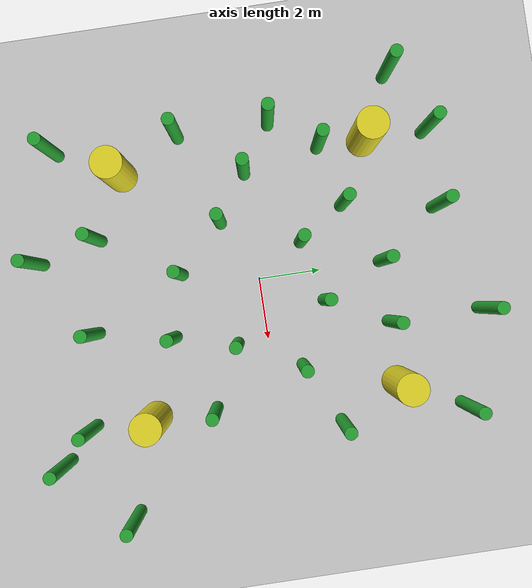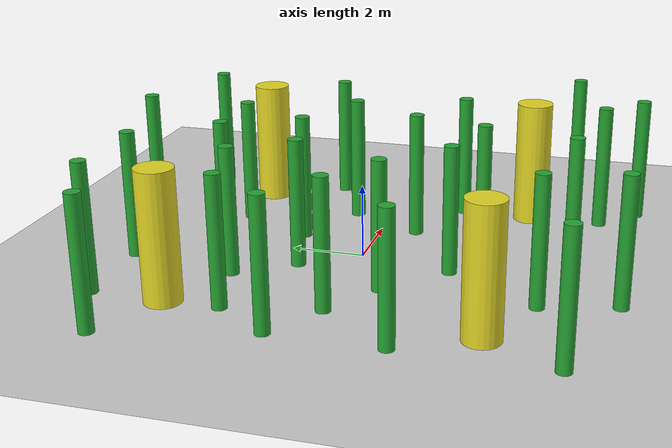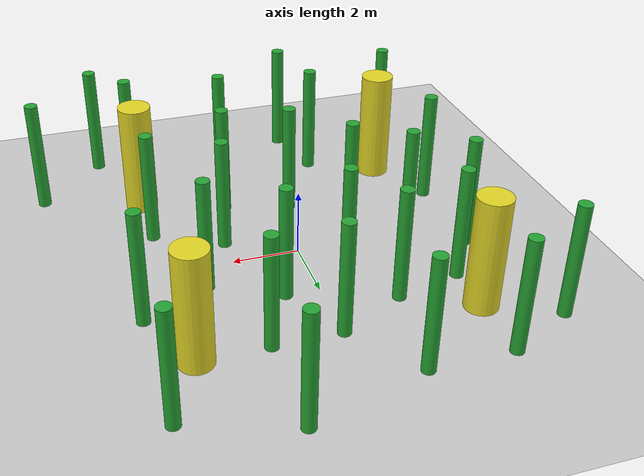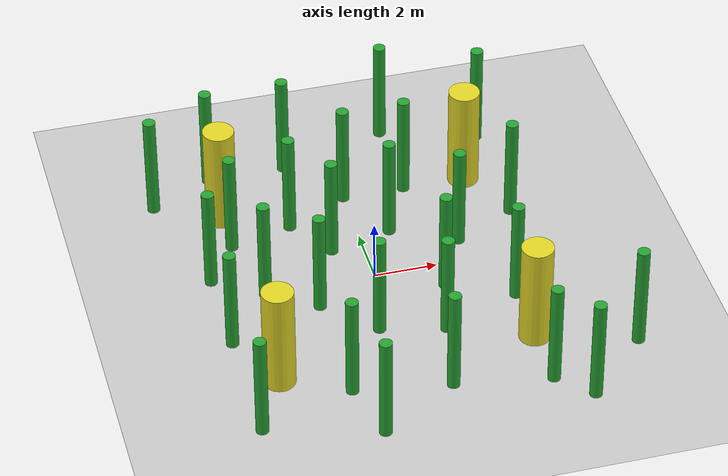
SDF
<?xml version="1.0" ?>
<sdf version="1.5">
  <world name="default">

    <!-- 初始视角 -->
    <gui fullscreen='0'>
      <camera name='user_camera'>
        <pose>0.0 -26.0 10.0 0 0.35 1.5</pose>
        <view_controller>orbit</view_controller>
      </camera>
    </gui>

    <physics name='default_physics' default='0' type='ode'>
      <gravity>0 0 -9.8066</gravity>
      <ode>
        <solver>
          <type>quick</type>
          <iters>150</iters>
          <sor>1.3</sor>
          <use_dynamic_moi_rescaling>0</use_dynamic_moi_rescaling>
        </solver>
        <constraints>
          <cfm>0.00001</cfm>
          <erp>0.2</erp>
          <contact_max_correcting_vel>1000</contact_max_correcting_vel>
          <contact_surface_layer>0.01</contact_surface_layer>
        </constraints>
      </ode>
      <max_step_size>0.004</max_step_size>
      <real_time_factor>1000.0</real_time_factor>
      <real_time_update_rate>250</real_time_update_rate>
      <magnetic_field>6.0e-6 2.3e-5 -4.2e-5</magnetic_field>
    </physics>

    <!-- A global light source -->
    <include>
      <uri>model://sun</uri>
    </include>

    <!-- A ground plane -->
    <model name='ground_plane'>
      <static>1</static>
      <link name='link'>
        <collision name='collision'>
          <geometry>
            <plane>
              <normal>0 0 1</normal>
              <size>100 100</size>
            </plane>
          </geometry>
          <surface>
            <friction>
              <ode>
                <mu>100</mu>
                <mu2>50</mu2>
              </ode>
              <torsional>
                <ode/>
              </torsional>
            </friction>
            <bounce/>
            <contact>
              <ode/>
            </contact>
          </surface>
          <max_contacts>10</max_contacts>
        </collision>
        <visual name='visual'>
          <cast_shadows>0</cast_shadows>
          <geometry>
            <plane>
              <normal>0 0 1</normal>
              <size>100 100</size>
            </plane>
          </geometry>
          <material>
            <script>
              <uri>file://media/materials/scripts/gazebo.material</uri>
              <name>Gazebo/Grey</name>
            </script>
          </material>
        </visual>
        <velocity_decay>
          <linear>0</linear>
          <angular>0</angular>
        </velocity_decay>
        <self_collide>0</self_collide>
        <kinematic>0</kinematic>
        <gravity>1</gravity>
      </link>
    </model>

    <!-- pillar_m半径为0.5米，pillar_s半径为0.2米 -->
    <!-- 4个pillar_m，均匀分布 -->
    <model name='pillar_m_1'>
      <include>
        <uri>model://pillar_m</uri>
        <pose> 4 4 1.75 0 0 0 </pose>
      </include>
    </model>
    <model name='pillar_m_2'>
      <include>
        <uri>model://pillar_m</uri>
        <pose>4 -4.0 1.75 0 0 0</pose>
      </include>
    </model>
    <model name='pillar_m_3'>
      <include>
        <uri>model://pillar_m</uri>
        <pose>-4 4 1.75 0 0 0</pose>
      </include>
    </model>
    <model name='pillar_m_4'>
      <include>
        <uri>model://pillar_m</uri>
        <pose>-4 -4 1.75 0 0 0</pose>
      </include>
    </model>

    <!-- 第一向限：6个 -->
    <model name='pillar_s_11'>
      <include>
        <uri>model://pillar_s</uri>
        <pose>1 2 1.75 0 0 0</pose>
      </include>
    </model>
    <model name='pillar_s_12'>
      <include>
        <uri>model://pillar_s</uri>
        <pose>3 1 1.75 0 0 0</pose>
      </include>
    </model>
    <model name='pillar_s_13'>
      <include>
        <uri>model://pillar_s</uri>
        <pose>2 4 1.75 0 0 0</pose>
      </include>
    </model>
    <model name='pillar_s_14'>
      <include>
        <uri>model://pillar_s</uri>
        <pose>2.0 7 1.75 0 0 0</pose>
      </include>
    </model>
    <model name='pillar_s_15'>
      <include>
        <uri>model://pillar_s</uri>
        <pose>0 4 1.75 0 0 0</pose>
      </include>
    </model>
    <model name='pillar_s_16'>
      <include>
        <uri>model://pillar_s</uri>
        <pose>5 2 1.75 0 0 0</pose>
      </include>
    </model>
    <model name='pillar_s_17'>
      <include>
        <uri>model://pillar_s</uri>
        <pose>5 6 1.75 0 0 0</pose>
      </include>
    </model>

    <!-- 第二向限：6个 -->
    <model name='pillar_s_21'>
      <include>
        <uri>model://pillar_s</uri>
        <pose>-2 3 1.75 0 0 0</pose>
      </include>
    </model>
    <model name='pillar_s_22'>
      <include>
        <uri>model://pillar_s</uri>
        <pose>-4 6 1.75 0 0 0</pose>
      </include>
    </model>
    <model name='pillar_s_23'>
      <include>
        <uri>model://pillar_s</uri>
        <pose>-5 1 1.75 0 0 0</pose>
      </include>
    </model>
    <model name='pillar_s_24'>
      <include>
        <uri>model://pillar_s</uri>
        <pose>-1 1.5 1.75 0 0 0</pose>
      </include>
    </model>
    <model name='pillar_s_25'>
      <include>
        <uri>model://pillar_s</uri>
        <pose>-1.5 6.0 1.75 0 0 0</pose>
      </include>
    </model>
    <model name='pillar_s_26'>
      <include>
        <uri>model://pillar_s</uri>
        <pose>-6 5 1.75 0 0 0</pose>
      </include>
    </model>
    <model name='pillar_s_27'>
      <include>
        <uri>model://pillar_s</uri>
        <pose>-4 2.5 1.75 0 0 0</pose>
      </include>
    </model>
    <!-- 第三向限：6个 -->
    <model name='pillar_s_31'>
      <include>
        <uri>model://pillar_s</uri>
        <pose>-3.5 -0 1.75 0 0 0</pose>
      </include>
    </model>
    <model name='pillar_s_32'>
      <include>
        <uri>model://pillar_s</uri>
        <pose>-2 -1 1.75 0 0 0</pose>
      </include>
    </model>
    <model name='pillar_s_33'>
      <include>
        <uri>model://pillar_s</uri>
        <pose>-2 -5 1.75 0 0 0</pose>
      </include>
    </model>
    <model name='pillar_s_34'>
      <include>
        <uri>model://pillar_s</uri>
        <pose>-1.5 -7 1.75 0 0 0</pose>
      </include>
    </model>
    <model name='pillar_s_35'>
      <include>
        <uri>model://pillar_s</uri>
        <pose>-0.5 -2.5 1.75 0 0 0</pose>
      </include>
    </model>
    <model name='pillar_s_36'>
      <include>
        <uri>model://pillar_s</uri>
        <pose>-5 -6 1.75 0 0 0</pose>
      </include>
    </model>
    <model name='pillar_s_37'>
      <include>
        <uri>model://pillar_s</uri>
        <pose>-5 -2 1.75 0 0 0</pose>
      </include>
    </model>
    <!-- 第四向限：6个 -->
    <model name='pillar_s_41'>
      <include>
        <uri>model://pillar_s</uri>
        <pose>2 -1 1.75 0 0 0</pose>
      </include>
    </model>
    <model name='pillar_s_42'>
      <include>
        <uri>model://pillar_s</uri>
        <pose>4 -6 1.75 0 0 0</pose>
      </include>
    </model>
    <model name='pillar_s_43'>
      <include>
        <uri>model://pillar_s</uri>
        <pose>5 -7 1.75 0 0 0</pose>
      </include>
    </model>
    <model name='pillar_s_44'>
      <include>
        <uri>model://pillar_s</uri>
        <pose>1.5 -3 1.75 0 0 0</pose>
      </include>
    </model>
    <model name='pillar_s_45'>
      <include>
        <uri>model://pillar_s</uri>
        <pose>1 -5.5 1.75 0 0 0</pose>
      </include>
    </model>
    <model name='pillar_s_46'>
      <include>
        <uri>model://pillar_s</uri>
        <pose>7 -5 1.75 0 0 0</pose>
      </include>
    </model>
    <model name='pillar_s_47'>
      <include>
        <uri>model://pillar_s</uri>
        <pose>4 -2 1.75 0 0 0</pose>
      </include>
    </model>

  </world>
</sdf>

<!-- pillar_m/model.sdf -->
<sdf version='1.6'>
  <model name='pillar_m'>
    <link name='link'>
      <inertial>
        <mass>1000</mass>
        <pose frame=''>0 0 0 0 -0 0</pose>
      </inertial>
      <self_collide>0</self_collide>
      <enable_wind>0</enable_wind>
      <kinematic>0</kinematic>
      <pose frame=''>0 0 0 0 -0 0</pose>
      <gravity>1</gravity>
      <visual name='visual'>
        <geometry>
          <cylinder>
            <radius>0.5</radius>
            <length>3.5</length>
          </cylinder>
        </geometry>
        <material>
          <script>
            <name>Gazebo/Yellow</name>
            <uri>file://media/materials/scripts/gazebo.material</uri>
          </script>
          <shader type='pixel'>
            <normal_map>__default__</normal_map>
          </shader>
          <ambient>0.988 0.914 0.31 1</ambient>
          <diffuse>0.7 0.7 0.7 1</diffuse>
          <specular>0.01 0.01 0.01 1</specular>
          <emissive>0 0 0 1</emissive>
        </material>
        <pose frame=''>0 0 0 0 -0 0</pose>
        <transparency>0</transparency>
        <cast_shadows>1</cast_shadows>
      </visual>
      <collision name='collision'>
        <laser_retro>0</laser_retro>
        <max_contacts>10</max_contacts>
        <pose frame=''>0 0 0 0 -0 0</pose>
        <geometry>
          <cylinder>
            <radius>0.5</radius>
            <length>3.5</length>
          </cylinder>
        </geometry>
      </collision>
    </link>
    <static>0</static>
    <allow_auto_disable>1</allow_auto_disable>
  </model>
</sdf>

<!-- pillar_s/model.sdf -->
<sdf version='1.6'>
  <model name='pillar_s'>
    <link name='link'>
      <inertial>
        <mass>1000</mass>
        <pose frame=''>0 0 0 0 -0 0</pose>
      </inertial>
      <self_collide>0</self_collide>
      <enable_wind>0</enable_wind>
      <kinematic>0</kinematic>
      <pose frame=''>0 0 0 0 -0 0</pose>
      <gravity>1</gravity>
      <visual name='visual'>
        <geometry>
          <cylinder>
            <radius>0.2</radius>
            <length>3.5</length>
          </cylinder>
        </geometry>
        <material>
          <script>
            <name>Gazebo/Green</name>
            <uri>file://media/materials/scripts/gazebo.material</uri>
          </script>
          <shader type='pixel'>
            <normal_map>__default__</normal_map>
          </shader>
          <ambient>0. 0.914 0. 1</ambient>
          <diffuse>0.7 0.7 0.7 1</diffuse>
          <specular>0.01 0.01 0.01 1</specular>
          <emissive>0 0 0 1</emissive>
        </material>
        <pose frame=''>0 0 0 0 -0 0</pose>
        <transparency>0</transparency>
        <cast_shadows>1</cast_shadows>
      </visual>
      <collision name='collision'>
        <laser_retro>0</laser_retro>
        <max_contacts>10</max_contacts>
        <pose frame=''>0 0 0 0 -0 0</pose>
        <geometry>
          <cylinder>
            <radius>0.2</radius>
            <length>3.5</length>
          </cylinder>
        </geometry>
      </collision>
    </link>
    <static>0</static>
    <allow_auto_disable>1</allow_auto_disable>
  </model>
</sdf>
